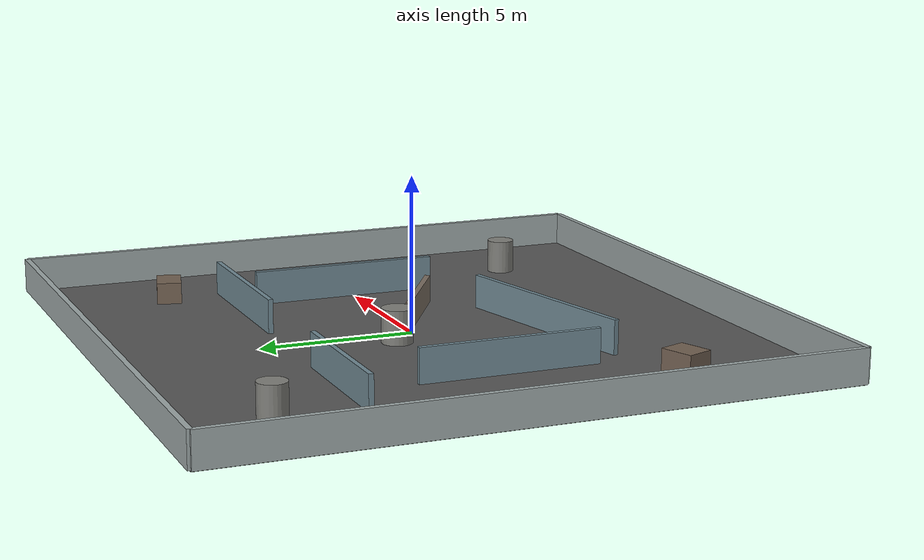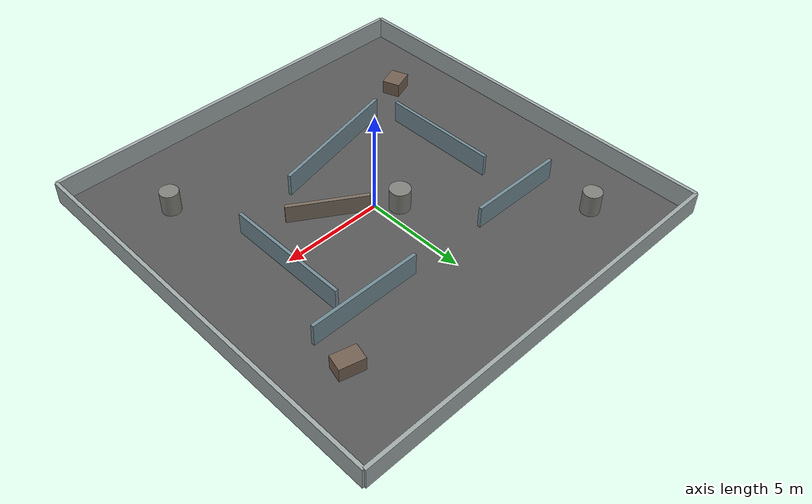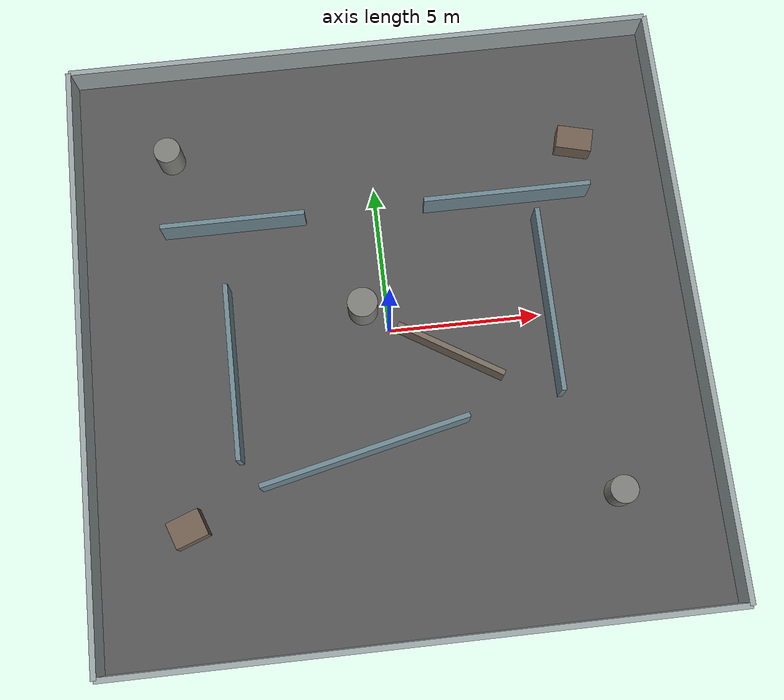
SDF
<?xml version="1.0" ?>
<sdf version="1.6">
  <world name="odin_rescue_20x20">
    <plugin name="gazebo_ros_init" filename="libgazebo_ros_init.so"/>
    <plugin name="gazebo_ros_factory" filename="libgazebo_ros_factory.so"/>

    <include>
      <uri>model://sun</uri>
    </include>

    <model name="flat_floor">
      <static>true</static>
      <link name="link">
        <collision name="collision">
          <geometry>
            <box>
              <size>20.0 20.0 0.04</size>
            </box>
          </geometry>
          <pose>0 0 -0.02 0 0 0</pose>
        </collision>
        <visual name="visual">
          <geometry>
            <box>
              <size>20.0 20.0 0.04</size>
            </box>
          </geometry>
          <pose>0 0 -0.02 0 0 0</pose>
          <material>
            <ambient>0.34 0.34 0.34 1</ambient>
            <diffuse>0.34 0.34 0.34 1</diffuse>
          </material>
        </visual>
      </link>
    </model>

    <model name="outer_wall_north">
      <static>true</static>
      <pose>0 10 0.55 0 0 0</pose>
      <link name="link">
        <collision name="collision"><geometry><box><size>20.0 0.18 1.1</size></box></geometry></collision>
        <visual name="visual"><geometry><box><size>20.0 0.18 1.1</size></box></geometry><material><ambient>0.62 0.66 0.66 1</ambient><diffuse>0.62 0.66 0.66 1</diffuse></material></visual>
      </link>
    </model>

    <model name="outer_wall_south">
      <static>true</static>
      <pose>0 -10 0.55 0 0 0</pose>
      <link name="link">
        <collision name="collision"><geometry><box><size>20.0 0.18 1.1</size></box></geometry></collision>
        <visual name="visual"><geometry><box><size>20.0 0.18 1.1</size></box></geometry><material><ambient>0.62 0.66 0.66 1</ambient><diffuse>0.62 0.66 0.66 1</diffuse></material></visual>
      </link>
    </model>

    <model name="outer_wall_east">
      <static>true</static>
      <pose>10 0 0.55 0 0 0</pose>
      <link name="link">
        <collision name="collision"><geometry><box><size>0.18 20.0 1.1</size></box></geometry></collision>
        <visual name="visual"><geometry><box><size>0.18 20.0 1.1</size></box></geometry><material><ambient>0.62 0.66 0.66 1</ambient><diffuse>0.62 0.66 0.66 1</diffuse></material></visual>
      </link>
    </model>

    <model name="outer_wall_west">
      <static>true</static>
      <pose>-10 0 0.55 0 0 0</pose>
      <link name="link">
        <collision name="collision"><geometry><box><size>0.18 20.0 1.1</size></box></geometry></collision>
        <visual name="visual"><geometry><box><size>0.18 20.0 1.1</size></box></geometry><material><ambient>0.62 0.66 0.66 1</ambient><diffuse>0.62 0.66 0.66 1</diffuse></material></visual>
      </link>
    </model>

    <model name="north_partition_west">
      <static>true</static>
      <pose>-4.8 4.1 0.55 0 0 0</pose>
      <link name="link">
        <collision name="collision"><geometry><box><size>4.8 0.16 1.1</size></box></geometry></collision>
        <visual name="visual"><geometry><box><size>4.8 0.16 1.1</size></box></geometry><material><ambient>0.44 0.54 0.58 1</ambient><diffuse>0.44 0.54 0.58 1</diffuse></material></visual>
      </link>
    </model>

    <model name="north_partition_east">
      <static>true</static>
      <pose>4.4 4.1 0.55 0 0 0</pose>
      <link name="link">
        <collision name="collision"><geometry><box><size>5.6 0.16 1.1</size></box></geometry></collision>
        <visual name="visual"><geometry><box><size>5.6 0.16 1.1</size></box></geometry><material><ambient>0.44 0.54 0.58 1</ambient><diffuse>0.44 0.54 0.58 1</diffuse></material></visual>
      </link>
    </model>

    <model name="south_partition">
      <static>true</static>
      <pose>-1.2 -4.0 0.55 0 0 0.22</pose>
      <link name="link">
        <collision name="collision"><geometry><box><size>7.0 0.16 1.1</size></box></geometry></collision>
        <visual name="visual"><geometry><box><size>7.0 0.16 1.1</size></box></geometry><material><ambient>0.44 0.54 0.58 1</ambient><diffuse>0.44 0.54 0.58 1</diffuse></material></visual>
      </link>
    </model>

    <model name="west_vertical_partition">
      <static>true</static>
      <pose>-5.2 -1.0 0.55 0 0 0</pose>
      <link name="link">
        <collision name="collision"><geometry><box><size>0.16 5.8 1.1</size></box></geometry></collision>
        <visual name="visual"><geometry><box><size>0.16 5.8 1.1</size></box></geometry><material><ambient>0.44 0.54 0.58 1</ambient><diffuse>0.44 0.54 0.58 1</diffuse></material></visual>
      </link>
    </model>

    <model name="east_vertical_partition">
      <static>true</static>
      <pose>5.3 0.3 0.55 0 0 0</pose>
      <link name="link">
        <collision name="collision"><geometry><box><size>0.16 6.2 1.1</size></box></geometry></collision>
        <visual name="visual"><geometry><box><size>0.16 6.2 1.1</size></box></geometry><material><ambient>0.44 0.54 0.58 1</ambient><diffuse>0.44 0.54 0.58 1</diffuse></material></visual>
      </link>
    </model>

    <model name="diagonal_debris_wall">
      <static>true</static>
      <pose>1.9 -1.0 0.45 0 0 -0.55</pose>
      <link name="link">
        <collision name="collision"><geometry><box><size>3.8 0.18 0.9</size></box></geometry></collision>
        <visual name="visual"><geometry><box><size>3.8 0.18 0.9</size></box></geometry><material><ambient>0.48 0.43 0.38 1</ambient><diffuse>0.48 0.43 0.38 1</diffuse></material></visual>
      </link>
    </model>

    <model name="column_nw">
      <static>true</static>
      <pose>-6.8 6.8 0.55 0 0 0</pose>
      <link name="link">
        <collision name="collision"><geometry><cylinder><radius>0.45</radius><length>1.1</length></cylinder></geometry></collision>
        <visual name="visual"><geometry><cylinder><radius>0.45</radius><length>1.1</length></cylinder></geometry><material><ambient>0.50 0.50 0.48 1</ambient><diffuse>0.50 0.50 0.48 1</diffuse></material></visual>
      </link>
    </model>

    <model name="column_center">
      <static>true</static>
      <pose>-0.8 0.8 0.55 0 0 0</pose>
      <link name="link">
        <collision name="collision"><geometry><cylinder><radius>0.50</radius><length>1.1</length></cylinder></geometry></collision>
        <visual name="visual"><geometry><cylinder><radius>0.50</radius><length>1.1</length></cylinder></geometry><material><ambient>0.50 0.50 0.48 1</ambient><diffuse>0.50 0.50 0.48 1</diffuse></material></visual>
      </link>
    </model>

    <model name="column_se">
      <static>true</static>
      <pose>6.7 -6.1 0.55 0 0 0</pose>
      <link name="link">
        <collision name="collision"><geometry><cylinder><radius>0.45</radius><length>1.1</length></cylinder></geometry></collision>
        <visual name="visual"><geometry><cylinder><radius>0.45</radius><length>1.1</length></cylinder></geometry><material><ambient>0.50 0.50 0.48 1</ambient><diffuse>0.50 0.50 0.48 1</diffuse></material></visual>
      </link>
    </model>

    <model name="debris_box_west">
      <static>true</static>
      <pose>-7.0 -5.8 0.35 0 0 0.35</pose>
      <link name="link">
        <collision name="collision"><geometry><box><size>1.1 0.9 0.7</size></box></geometry></collision>
        <visual name="visual"><geometry><box><size>1.1 0.9 0.7</size></box></geometry><material><ambient>0.45 0.38 0.32 1</ambient><diffuse>0.45 0.38 0.32 1</diffuse></material></visual>
      </link>
    </model>

    <model name="debris_box_east">
      <static>true</static>
      <pose>7.0 5.9 0.35 0 0 -0.25</pose>
      <link name="link">
        <collision name="collision"><geometry><box><size>1.2 0.8 0.7</size></box></geometry></collision>
        <visual name="visual"><geometry><box><size>1.2 0.8 0.7</size></box></geometry><material><ambient>0.45 0.38 0.32 1</ambient><diffuse>0.45 0.38 0.32 1</diffuse></material></visual>
      </link>
    </model>
  </world>
</sdf>
